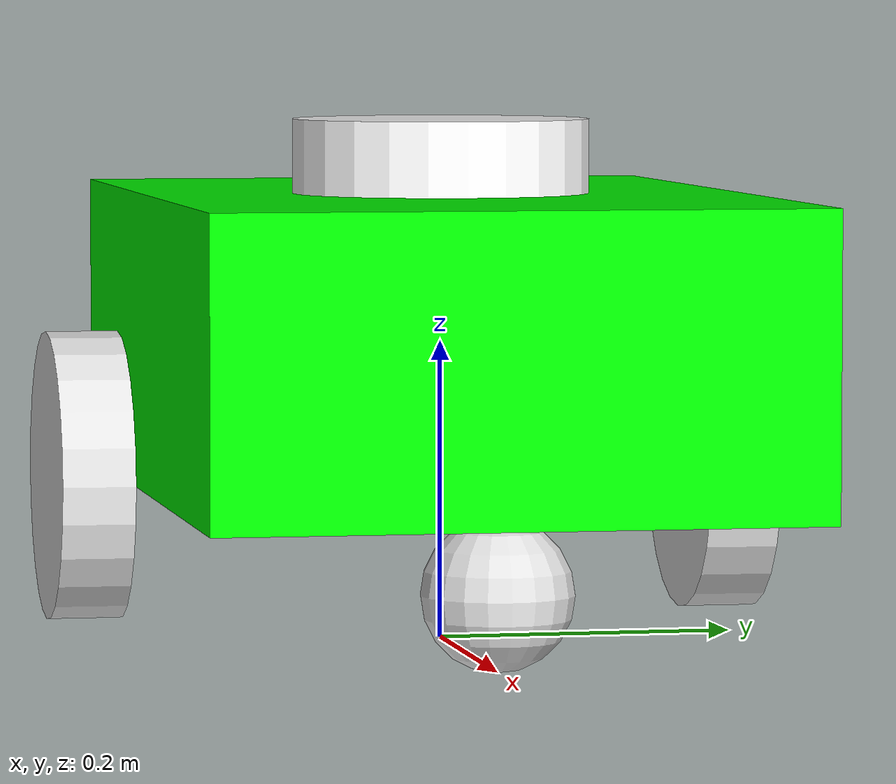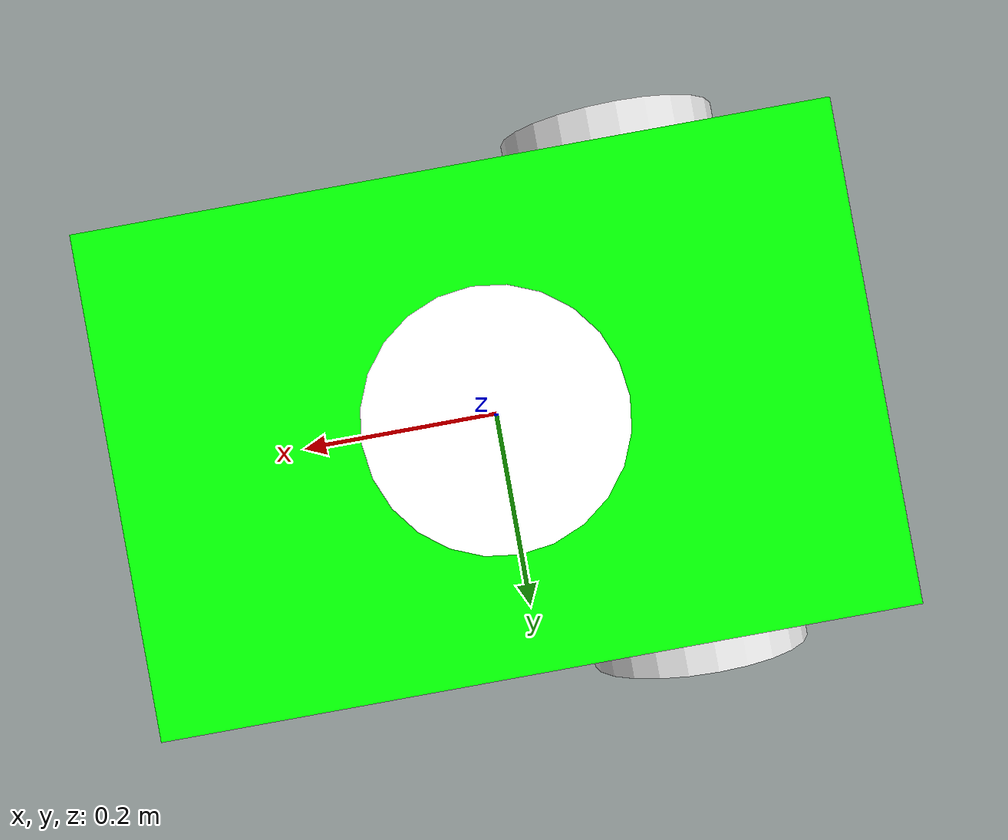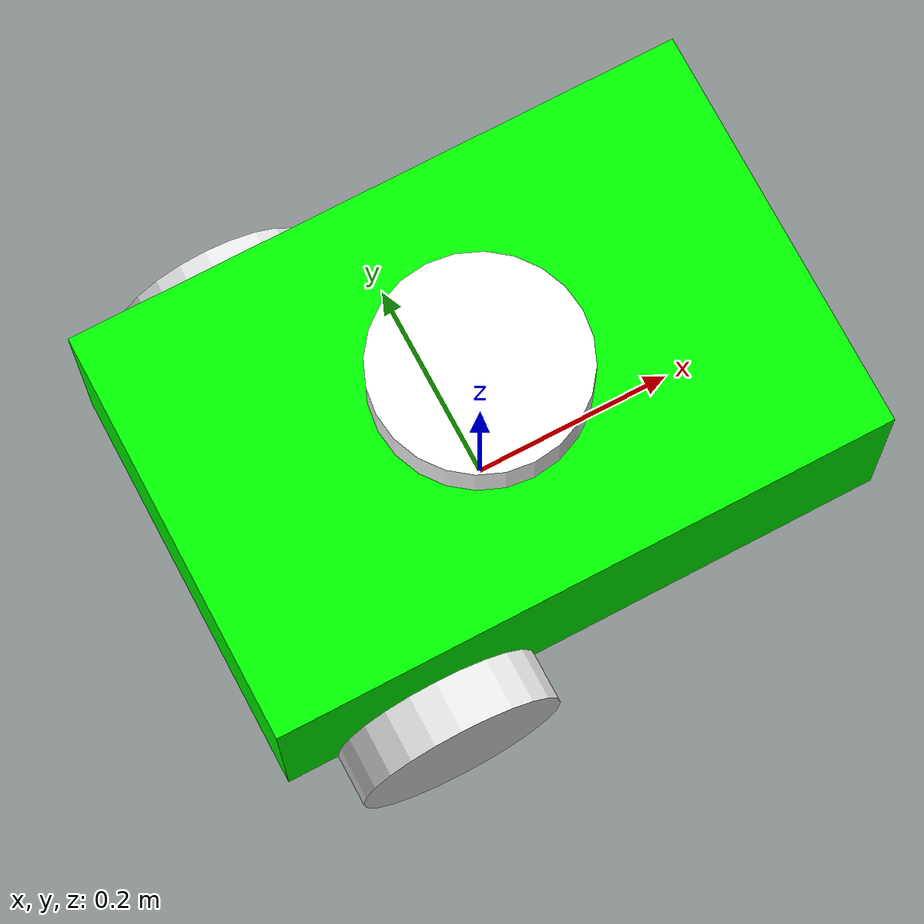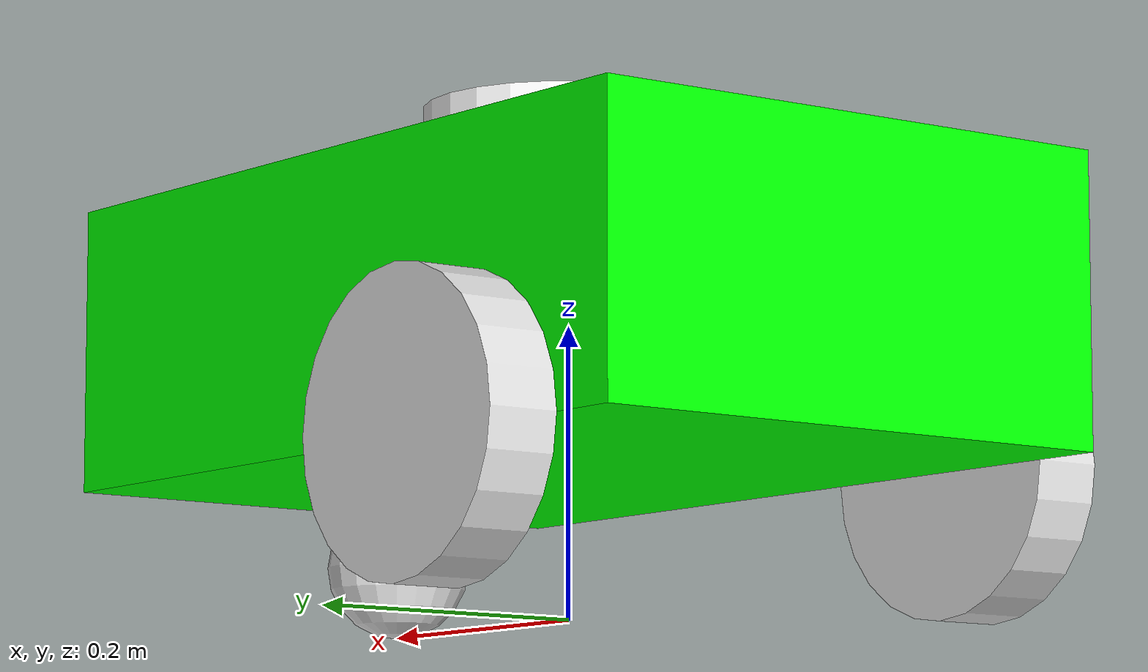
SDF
<sdf version='1.9'>
  <model name='my_robot'>
    <link name='base_footprint'>
      <inertial>
        <pose>0.003773584905660379 0 0.2018867924528302 0 0 0</pose>
        <mass>5.2999999999999998</mass>
        <inertia>
          <ixx>0.089328132075471661</ixx>
          <ixy>0</ixy>
          <ixz>0.0030377358490566051</ixz>
          <iyy>0.17659266037735841</iyy>
          <iyz>0</iyz>
          <izz>0.2216945283018868</izz>
        </inertia>
      </inertial>
      <collision name='base_footprint_fixed_joint_lump__base_link_collision'>
        <pose>0 0 0.2 0 0 0</pose>
        <geometry>
          <box>
            <size>0.6 0.4 0.2</size>
          </box>
        </geometry>
      </collision>
      <collision name='base_footprint_fixed_joint_lump__castor_wheel_link_collision_1'>
        <pose>0.2 0 0.05 0 0 0</pose>
        <geometry>
          <sphere>
            <radius>0.050000000000000003</radius>
          </sphere>
        </geometry>
        <surface>
          <contact>
            <ode/>
          </contact>
          <friction>
            <ode>
              <mu>0.01</mu>
              <mu2>0.01</mu2>
            </ode>
          </friction>
        </surface>
      </collision>
      <visual name='base_footprint_fixed_joint_lump__base_link_visual'>
        <pose>0 0 0.2 0 0 0</pose>
        <geometry>
          <box>
            <size>0.6 0.4 0.2</size>
          </box>
        </geometry>
        <material>
          <diffuse>0 1 0 1</diffuse>
          <ambient>0 1 0 1</ambient>
        </material>
      </visual>
      <visual name='base_footprint_fixed_joint_lump__castor_wheel_link_visual_1'>
        <pose>0.2 0 0.05 0 0 0</pose>
        <geometry>
          <sphere>
            <radius>0.050000000000000003</radius>
          </sphere>
        </geometry>
        <material>
          <diffuse>0.875 0.875 0.875 1</diffuse>
          <ambient>0.875 0.875 0.875 1</ambient>
        </material>
      </visual>
      <visual name='base_footprint_fixed_joint_lump__lidar_link_visual_2'>
        <pose>0 0 0.325 0 0 0</pose>
        <geometry>
          <cylinder>
            <length>0.050000000000000003</length>
            <radius>0.10000000000000001</radius>
          </cylinder>
        </geometry>
        <material>
          <diffuse>1 1 1 1</diffuse>
          <ambient>1 1 1 1</ambient>
        </material>
      </visual>
      <sensor name='gpu_lidar' type='gpu_lidar'>
        <pose relative_to='lidar_link'>0 0 0 0 0 0</pose>

        <topic>/scan</topic>
        <frame_id>lidar_link</frame_id>

        <update_rate>10</update_rate>
        <always_on>true</always_on>
        <visualize>true</visualize>

        <ray>
          <scan>
            <horizontal>
              <samples>360</samples>
              <resolution>1</resolution>
              <min_angle>-3.14159</min_angle>
              <max_angle>3.14159</max_angle>
            </horizontal>
          </scan>

          <range>
            <min>0.10</min>
            <max>8.0</max>
            <resolution>0.01</resolution>
          </range>
        </ray>
      </sensor>
      <sensor name="imu_sensor" type="imu">
        <pose>0 0 0.25 0 0 0</pose>
        <topic>/imu</topic>
        <frame_id>base_link</frame_id>
        <update_rate>50</update_rate>
        <always_on>true</always_on>
        <visualize>true</visualize>
      </sensor>
    </link>
    <joint name='base_left_wheel_joint' type='revolute'>
      <pose relative_to='base_footprint'>-0.15 0.225 0.1 0 0 0</pose>
      <parent>base_footprint</parent>
      <child>left_wheel_link</child>
      <axis>
        <xyz>0 1 0</xyz>
        <limit>
          <lower>-10000000000000000</lower>
          <upper>10000000000000000</upper>
        </limit>
        <dynamics>
          <spring_reference>0</spring_reference>
          <spring_stiffness>0</spring_stiffness>
        </dynamics>
      </axis>
    </joint>
    <link name='left_wheel_link'>
      <pose relative_to='base_left_wheel_joint'>0 0 0 0 0 0</pose>
      <inertial>
        <pose>0 0 0 0 0 0</pose>
        <mass>0.20000000000000001</mass>
        <inertia>
          <ixx>0.00054199999999999995</ixx>
          <ixy>0</ixy>
          <ixz>0</ixz>
          <iyy>0.001</iyy>
          <iyz>0</iyz>
          <izz>0.00054199999999999995</izz>
        </inertia>
      </inertial>
      <collision name='left_wheel_link_collision'>
        <pose>0 0 0 1.57 0 0</pose>
        <geometry>
          <cylinder>
            <length>0.050000000000000003</length>
            <radius>0.10000000000000001</radius>
          </cylinder>
        </geometry>
      </collision>
      <visual name='left_wheel_link_visual'>
        <pose>0 0 0 1.57 0 0</pose>
        <geometry>
          <cylinder>
            <length>0.050000000000000003</length>
            <radius>0.10000000000000001</radius>
          </cylinder>
        </geometry>
        <material>
          <diffuse>0.875 0.875 0.875 1</diffuse>
          <ambient>0.875 0.875 0.875 1</ambient>
        </material>
      </visual>
    </link>
    <joint name='base_right_wheel_joint' type='revolute'>
      <pose relative_to='base_footprint'>-0.15 -0.225 0.1 0 0 0</pose>
      <parent>base_footprint</parent>
      <child>right_wheel_link</child>
      <axis>
        <xyz>0 1 0</xyz>
        <limit>
          <lower>-10000000000000000</lower>
          <upper>10000000000000000</upper>
        </limit>
        <dynamics>
          <spring_reference>0</spring_reference>
          <spring_stiffness>0</spring_stiffness>
        </dynamics>
      </axis>
    </joint>
    <link name='right_wheel_link'>
      <pose relative_to='base_right_wheel_joint'>0 0 0 0 0 0</pose>
      <inertial>
        <pose>0 0 0 0 0 0</pose>
        <mass>0.20000000000000001</mass>
        <inertia>
          <ixx>0.00054199999999999995</ixx>
          <ixy>0</ixy>
          <ixz>0</ixz>
          <iyy>0.001</iyy>
          <iyz>0</iyz>
          <izz>0.00054199999999999995</izz>
        </inertia>
      </inertial>
      <collision name='right_wheel_link_collision'>
        <pose>0 0 0 1.57 0 0</pose>
        <geometry>
          <cylinder>
            <length>0.050000000000000003</length>
            <radius>0.10000000000000001</radius>
          </cylinder>
        </geometry>
      </collision>
      <visual name='right_wheel_link_visual'>
        <pose>0 0 0 1.57 0 0</pose>
        <geometry>
          <cylinder>
            <length>0.050000000000000003</length>
            <radius>0.10000000000000001</radius>
          </cylinder>
        </geometry>
        <material>
          <diffuse>0.875 0.875 0.875 1</diffuse>
          <ambient>0.875 0.875 0.875 1</ambient>
        </material>
      </visual>
    </link>
    <frame name='base_castor_wheel_joint' attached_to='base_link'>
      <pose>0.2 0 -0.05 0 -0 0</pose>
    </frame>
    <frame name='castor_wheel_link' attached_to='base_castor_wheel_joint'/>
    <frame name='base_lidar_joint' attached_to='base_link'>
      <pose>0 0 0.225 0 -0 0</pose>
    </frame>
    <frame name='lidar_link' attached_to='base_lidar_joint'/>
    <frame name='base_footprint_joint' attached_to='base_footprint'>
      <pose>0 0 0.1 0 -0 0</pose>
    </frame>
    <frame name='base_link' attached_to='base_footprint_joint'/>
    <plugin
      filename="libignition-gazebo-diff-drive-system.so"
      name="ignition::gazebo::systems::DiffDrive">

      <left_joint>base_left_wheel_joint</left_joint>
      <right_joint>base_right_wheel_joint</right_joint>

      <wheel_separation>0.45</wheel_separation>
      <wheel_radius>0.10</wheel_radius>

      <topic>/cmd_vel</topic>
      <odom_topic>/odom</odom_topic>
      <odom_publish_frequency>20</odom_publish_frequency>
    </plugin>
  </model>
</sdf>
